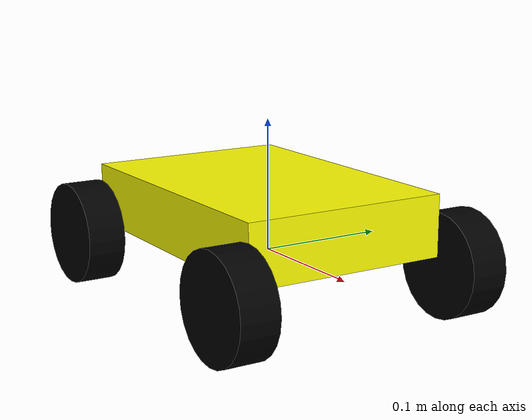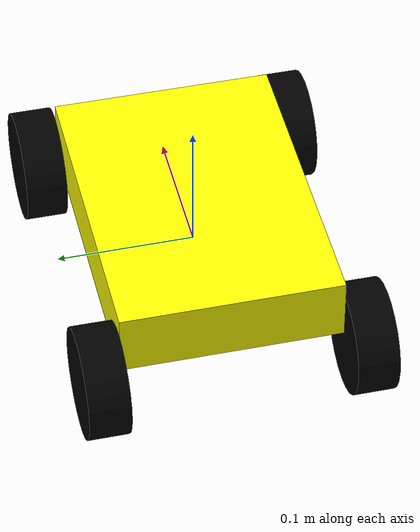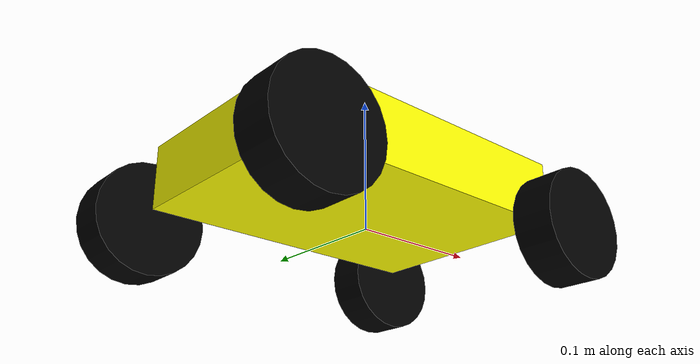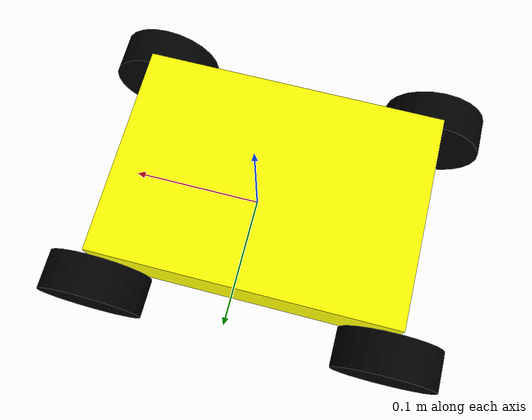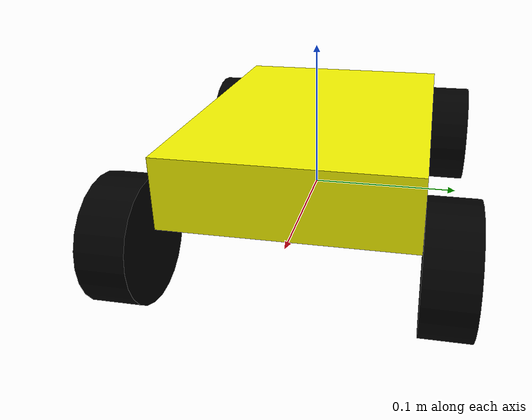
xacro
<?xml version="1.0"?>
<robot xmlns:xacro="http://www.ros.org/wiki/xacro">
<xacro:property name="c1"       value="0.227"/>
<xacro:property name="c2"       value="0.5"/>
<xacro:property name="mass"     value="0.5"/>
<xacro:property name="width"    value="0.16"/>
<xacro:property name="height"   value="0.047"/>
<xacro:property name="depth"    value="0.03 "/>
<xacro:property name="radius"   value="0.04 "/>
    <!-- COLORS -->
    <material name="yellow">
        <color rgba=" 1 1 0 1"/>
    </material>

    <material name="black">
        <color rgba="0 0 0 1"/>
    </material>

    <material name="Blue">
        <color rgba=" 0.2 0.2 1 1"/>
    </material>

    <material name="orange">
        <color rgba="1 0.3 0.1 1"/>
    </material>
    <link name="base_footprint">

    </link>

    <joint name="base_joint" type="fixed">
        <parent link="base_footprint" />
        <child link="base_link" />
        <origin xyz="-0.01 0 0" />
    </joint>

    <link name="base_link">

        <visual>
            <origin xyz="0 0 0.03" />
            <geometry>
                <box size ="0.227 0.16 0.047" />
            </geometry>
            <material name="yellow" />

        </visual>
         <collision>
            <origin xyz="0 0 0.03" />
            <geometry>
                <box size ="0.227 0.16 0.047" />
            </geometry>
        </collision>
        <inertial mass="0.5" x="0.227" y="0.16" z="0.047">
            <mass value="0.5"/>
            <origin xyz="0 0 0.03" rpy="0 0 0" />
            <inertia  ixx="${c1 * mass * (height * height + depth * depth)}" ixy="0.0" ixz="0.0"
                iyy="${c1 * mass * (height * height + depth * depth)}" iyz="0.0"
                izz="${c1 * mass * (height * height + depth * depth)}"/>
        </inertial>
    </link>
    <gazebo reference="base_link">
        <material>Gazebo/yellow</material>
    </gazebo>

    <joint name="wheel_front_left_joint" type="continuous">
        <parent link="base_link" />
        <child link="wheel_front_left_link" />
        <origin xyz="0.1135 0.095 0" rpy="-${pi/2} 0 0" />
        <axis xyz ="0 0 1" />
    </joint>

    <link name="wheel_front_left_link">
        <visual>
            <geometry>
                <cylinder radius="0.04" length="0.03"/>

            </geometry>
            <material name="black" />
        </visual>
        <collision>
            <geometry>
                <cylinder radius="0.04" length="0.03"/>
            </geometry>
        </collision>
        <inertial mass="0.1" length="0.03" radius="0.04">
            <mass value="0.1"/>
            <origin xyz="0 0 0" rpy="0 0 0" />
            <inertia  ixx="${c1 * mass * (height * height + depth * depth)}" ixy="0.0" ixz="0.0"
                iyy="${c1 * mass * (height * height + depth * depth)}" iyz="0.0"
                izz="${c1 * mass * (height * height + depth * depth)}"/>

        </inertial>
    </link>
    <gazebo reference="wheel_front_left_link">
        <material>Gazebo/black</material>
    </gazebo>

    <joint name="wheel_front_right_joint" type="continuous">
        <parent link="base_link" />
        <child link="wheel_front_right_link" />
        <origin xyz="0.1135 -0.095 0" rpy="${pi/2} 0 0" />
        <axis xyz ="0 0 -1" />
    </joint>
    <link name="wheel_front_right_link">
        <visual>
            <geometry>
                <cylinder radius="0.04" length="0.03" />

            </geometry>
            <material name="black" />
        </visual>
         <collision>
            <geometry>
                <cylinder radius="0.04" length="0.03" />
            </geometry>
        </collision>
        <inertial mass="0.1" length="0.03" radius="0.04">
            <mass value="0.1"/>
            <origin xyz="0 0 0" rpy="0 0 0" />
            <inertia  ixx="${c1 * mass * (height * height + depth * depth)}" ixy="0.0" ixz="0.0"
                iyy="${c1 * mass * (height * height + depth * depth)}" iyz="0.0"
                izz="${c1 * mass * (height * height + depth * depth)}"/>

        </inertial>
    </link>
    <gazebo reference="wheel_front_right_link">
        <material>Gazebo/black</material>
    </gazebo>

    <joint name="wheel_rear_left_joint" type="continuous">
        <parent link="base_link" />
        <child link="wheel_rear_left_link" />
        <origin xyz="-0.1135 0.095 0" rpy="-${pi/2} 0 0" />
        <axis xyz ="0 0 1" />
    </joint>
    <link name="wheel_rear_left_link">
        <visual>
            <geometry>
                <cylinder radius="0.04" length="0.03"/>

            </geometry>
            <material name="black" />
        </visual>
        <collision>
            <geometry>
                <cylinder radius="0.04" length="0.03"/>
                <material name="black" />
            </geometry>
        </collision>
        <inertial mass="0.1" length="0.03" radius="0.04">
            <mass value="0.1"/>
            <origin xyz="0 0 0" rpy="0 0 0" />
            <inertia  ixx="${c1 * mass * (height * height + depth * depth)}" ixy="0.0" ixz="0.0"
                iyy="${c1 * mass * (height * height + depth * depth)}" iyz="0.0"
                izz="${c1 * mass * (height * height + depth * depth)}"/>

        </inertial>
    </link>
    <gazebo reference="wheel_rear_left_link">
        <material>Gazebo/black</material>
    </gazebo>

    <joint name="wheel_rear_right_joint" type="continuous">
        <parent link="base_link" />
        <child link="wheel_rear_right_link" />
        <origin xyz="-0.1135 -0.095 0" rpy="${pi/2} 0 0" />
        <axis xyz ="0 0 -1" />
    </joint>
    <link name="wheel_rear_right_link">
        <visual>
            <geometry>
                <cylinder radius="0.04" length="0.03"/>
            </geometry>
            <material name="black" />
        </visual>
        <collision>
            <geometry>
                <cylinder radius="0.04" length="0.03"/>
            </geometry>
        </collision>
        <inertial mass="0.1" length="0.03" radius="0.04">
            <mass value="0.1"/>
            <origin xyz="0 0 0" rpy="0 0 0" />
            <inertia  ixx="${c1 * mass * (height * height + depth * depth)}" ixy="0.0" ixz="0.0"
                iyy="${c1 * mass * (height * height + depth * depth)}" iyz="0.0"
                izz="${c1 * mass * (height * height + depth * depth)}"/>

        </inertial>
    </link>
    <gazebo reference="wheel_rear_right_link">
        <material>Gazebo/black</material>
    </gazebo>

</robot>
